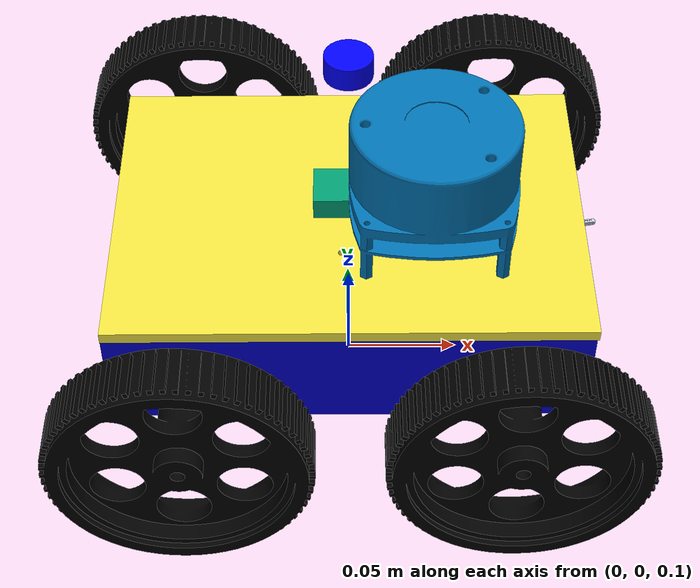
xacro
<?xml version="1.0"?>
<robot xmlns:xacro="http://www.ros.org/wiki/xacro" name="web_robot">

  <xacro:arg name="mesh_package" default="robot_description"/>
  <xacro:arg name="mesh_scale" default="0.1 0.1 0.1"/>
  <xacro:arg name="wheel_mass" default="0.25"/>
  <xacro:arg name="base_mass" default="2.0"/>
  <xacro:arg name="pi" default="3.141592653589793"/>
  <material name="blue"><color rgba="0 0 0.8 1"/></material>
  <material name="black"><color rgba="0 0 0 1"/></material>
  <material name="white"><color rgba="1 1 1 1"/></material>
  <physics type="ode">
    <real_time_update_rate>100</real_time_update_rate>
  </physics>
    <!-- Define inertial property macros  -->
  <xacro:macro name="box_inertia" params="m w h d">
    <inertial>
      <origin xyz="0 0 -0.05" rpy="0 0 0"/>
      <mass value="${m}"/>
      <inertia ixx="${(m/12) * (h*h + d*d)}" ixy="0.0" ixz="0.0" iyy="${(m/12) * (w*w + d*d)}" iyz="0.0" izz="${(m/12) * (w*w + h*h)}"/>
    </inertial>
  </xacro:macro>

  <xacro:macro name="cylinder_inertia" params="m r h">
    <inertial>
      <origin xyz="0 0 0" rpy="${pi/2} 0 0" />
      <mass value="${m}"/>
      <inertia ixx="${(m/12) * (3*r*r + h*h)}" ixy = "0" ixz = "0" iyy="${(m/12) * (3*r*r + h*h)}" iyz = "0" izz="${(m/2) * (r*r)}"/>
    </inertial>
  </xacro:macro>

  <xacro:macro name="sphere_inertia" params="m r">
    <inertial>
      <mass value="${m}"/>
      <inertia ixx="${(2/5) * m * (r*r)}" ixy="0.0" ixz="0.0" iyy="${(2/5) * m * (r*r)}" iyz="0.0" izz="${(2/5) * m * (r*r)}"/>
    </inertial>
  </xacro:macro>
  <xacro:macro name="base_link_macro" params="name">
    <link name="${name}">
      <visual>
        <origin xyz="0 0 0.0475"/>
        <geometry>
          <mesh filename="package://$(arg mesh_package)/meshes/base_link.dae" scale="$(arg mesh_scale)"/>
        </geometry>
        <material name="blue"/>
      </visual>
      <collision>
        <origin xyz="0 0 0.0475"/>
        <geometry>
          <mesh filename="package://$(arg mesh_package)/meshes/base_link.dae" scale="$(arg mesh_scale)" />
        </geometry>
      </collision>
      <xacro:box_inertia m="$(arg base_mass)" w="0.16" h="0.2" d="0.03"/>
    </link>
  </xacro:macro>
  <!-- DRIVEN wheel macro (front wheels - high longitudinal grip) -->
<xacro:macro name="driven_wheel_macro" params="name rpy xyz">
  <link name="${name}">
    <visual>
      <origin rpy="${rpy}" xyz="0 0 0"/>
      <geometry>
        <mesh filename="package://$(arg mesh_package)/meshes/wheel.dae" scale="$(arg mesh_scale)"/>
      </geometry>
      <material name="black"/>
    </visual>
    <collision>
      <origin rpy="${rpy}" xyz="0 0 0"/>
      <geometry>
        <mesh filename="package://$(arg mesh_package)/meshes/wheel.dae" scale="$(arg mesh_scale)"/>
      </geometry>
      <surface>
        <friction>
          <ode>
            <mu>1.0</mu>       <!-- good forward grip -->
            <mu2>0.003</mu2>     <!-- some lateral resistance is OK for driven wheels -->
            <slip1>0.02</slip1>
            <slip2>1.0</slip2>

          </ode>
        </friction>
        <contact>
          <ode>
            <kp>100000.0</kp>
            <kd>10.0</kd>
            <min_depth>0.001</min_depth>
          </ode>
        </contact>
      </surface>
    </collision>
    <xacro:cylinder_inertia m="$(arg wheel_mass)" r="0.054" h="0.02"/>
  </link>
  <joint name="${name}_joint" type="continuous">
    <axis xyz="0 1 0"/>
    <parent link="base_link"/>
    <child link="${name}"/>
    <origin rpy="0 0 0" xyz="${xyz}"/>
  </joint>
  <transmission name="${name}_trans">
    <type>transmission_interface/SimpleTransmission</type>
    <joint name="${name}_joint">
      <hardware_interface>hardware_interface/VelocityJointInterface</hardware_interface>
    </joint>
    <actuator name="${name}_motor">
      <hardware_interface>hardware_interface/VelocityJointInterface</hardware_interface>
      <mechanicalReduction>1</mechanicalReduction>
    </actuator>
  </transmission>
</xacro:macro>

<!-- PASSIVE wheel macro (rear wheels - must slip laterally during rotation) -->
<xacro:macro name="passive_wheel_macro" params="name rpy xyz ">
  <link name="${name}">
    <visual>
      <origin rpy="${rpy}" xyz="0 0 0"/>
      <geometry>
        <mesh filename="package://$(arg mesh_package)/meshes/wheel.dae" scale="$(arg mesh_scale)"/>
      </geometry>
      <material name="black"/>
    </visual>
    <collision>
      <origin rpy="${rpy}" xyz="0 0 0"/>
      <geometry>
        <mesh filename="package://$(arg mesh_package)/meshes/wheel.dae" scale="$(arg mesh_scale)"/>
      </geometry>
      <surface>
        <friction>
          <ode>
            <mu>1.5</mu>       <!-- some forward grip to follow the robot -->
            <mu2>0.01</mu2>    <!-- near-zero lateral friction = free sideways slip -->
            <slip1>0.002</slip1>
            <slip2>1.01</slip2> <!-- max lateral slip allowed -->

          </ode>
        </friction>
        <contact>
          <ode>
            <kp>100000.0</kp>
            <kd>10.0</kd>
            <min_depth>0.001</min_depth>
          </ode>
        </contact>
      </surface>
    </collision>
    <xacro:cylinder_inertia m="$(arg wheel_mass)" r="0.054" h="0.02"/>
  </link>
  <joint name="${name}_joint" type="continuous">
    <axis xyz="0 1 0"/>
    <parent link="base_link"/>
    <child link="${name}"/>
    <origin rpy="0 0 0" xyz="${xyz}"/>
  </joint>
  <transmission name="${name}_trans">
    <type>transmission_interface/SimpleTransmission</type>
    <joint name="${name}_joint">
      <hardware_interface>hardware_interface/VelocityJointInterface</hardware_interface>
    </joint>
    <actuator name="${name}_motor">
      <hardware_interface>hardware_interface/VelocityJointInterface</hardware_interface>
      <mechanicalReduction>1</mechanicalReduction>
    </actuator>
  </transmission>
</xacro:macro>

  <xacro:base_link_macro name="base_link"/>

  <!-- Dummy footprint -->
  <link name="base_footprint"/>
  <joint name="base_link_joint" type="fixed">
    <parent link="base_footprint"/>
    <child link="base_link"/>
    <origin xyz="0 0 0.1" rpy="0 0 0"/>
  </joint>
  <link name="camera_cad">
    <visual>
      <geometry>
      <mesh filename="package://$(arg mesh_package)/meshes/camera.dae" scale="$(arg mesh_scale)" />
      </geometry>
    </visual>
  </link>
  <joint name="camera_cad_joint" type="fixed">
    <parent link="base_link"/>
    <child link="camera_cad"/>
    <origin xyz="0.103 0 0.08" rpy="0 -0.17 0"/>
  </joint>

  <link name="top_cad">
    <visual>
      <geometry>
      <mesh filename="package://$(arg mesh_package)/meshes/top_cover.dae" scale="$(arg mesh_scale)" />
      </geometry>
    </visual>
  </link>
  <joint name="top_cover_joint" type="fixed">
    <parent link="base_link"/>
    <child link="top_cad"/>
    <origin xyz="0.1 0.07 0.09507" rpy="0 3.14 1.57075"/>
  </joint>

   <link name="lidar_cad">
    <visual>
      <geometry>
      <mesh filename="package://$(arg mesh_package)/meshes/lidar.dae" scale="$(arg mesh_scale)" />
      </geometry>
    </visual>
  </link>
  <joint name="lidar_joint" type="fixed">
    <parent link="base_link"/>
    <child link="lidar_cad"/>
    <origin xyz="0.0 -0.05 0.095" rpy="0 0 1.57075"/>
  </joint>

<!-- Front wheels: DRIVEN (controlled by diff_drive_controller) -->
<xacro:driven_wheel_macro  name="front_right_wheel" rpy="-1.57075 0 0" xyz="-0.069 -0.102 0.054"/>
<xacro:driven_wheel_macro  name="front_left_wheel"  rpy="1.57075 0 0"  xyz="-0.069 0.1 0.054"/>

<!-- Rear wheels: PASSIVE (free to slip sideways during turns) -->
<xacro:passive_wheel_macro name="back_right_wheel"  rpy="-1.57075 0 0" xyz="0.069 -0.102 0.054"/>
<xacro:passive_wheel_macro name="back_left_wheel"   rpy="1.57075 0 0"  xyz="0.069 0.1 0.054"/>
  <!-- Right side wheels (rpy has -1.57) -->

  <gazebo>
    <plugin name="gazebo_ros2_control" filename="libgazebo_ros2_control.so" >
      <parameters>$(find robot_description)/config/diff_drive_controllers.yaml</parameters>
    </plugin>

  </gazebo>

  <ros2_control name="WebRobotSystem" type="system">
    <hardware>
      <plugin>gazebo_ros2_control/GazeboSystem</plugin>
    </hardware>

    <joint name="front_left_wheel_joint">
      <command_interface name="velocity"/>
      <state_interface name="velocity"/>
      <state_interface name="position"/>
    </joint>
    <joint name="front_right_wheel_joint">
      <command_interface name="velocity"/>
      <state_interface name="velocity"/>
      <state_interface name="position"/>
    </joint>
    <joint name="back_left_wheel_joint">
      <command_interface name="velocity"/>
      <state_interface name="velocity"/>
      <state_interface name="position"/>
    </joint>
    <joint name="back_right_wheel_joint">
      <command_interface name="velocity"/>
      <state_interface name="velocity"/>
      <state_interface name="position"/>
    </joint>
  </ros2_control>

  <gazebo reference="front_right_wheel"><material>Gazebo/Black</material></gazebo>
  <gazebo reference="front_left_wheel"><material>Gazebo/Black</material></gazebo>
  <gazebo reference="back_right_wheel"><material>Gazebo/Black</material></gazebo>
  <gazebo reference="back_left_wheel"><material>Gazebo/Black</material></gazebo>
  <gazebo reference="base_link"><material>Gazebo/Blue</material></gazebo>

  <gazebo reference="camera_cad">
    <sensor name="camera" type="camera">

      <pose>0.1 0 0.98 0 -0.5 0</pose>
      <visualize>true</visualize>
      <update_rate>30.0</update_rate>
      <camera>
        <horizontal_fov>1.047</horizontal_fov>
        <image>
          <width>640</width>
          <height>480</height>
          <format>R8G8B8</format>
        </image>
        <clip><near>0.05</near><far>8</far></clip>
      </camera>
      <plugin name="camera_controller" filename="libgazebo_ros_camera.so">
        <ros>
          <namespace>camera</namespace>
          <argument>--ros-args -r __ns:=camera</argument>
        </ros>
        <camera_name>camera_sensor</camera_name>
        <frame_name>camera_link</frame_name>
      </plugin>
    </sensor>
  </gazebo>

<link name="laser_link">
  <inertial>
    <mass value="0.01"/>
    <inertia ixx="0.0001" ixy="0" ixz="0" iyy="0.0001" iyz="0" izz="0.0001"/>
  </inertial>
  <visual>
    <geometry>
      <cylinder radius="0.01" length="0.01"/>
    </geometry>
    <material name="blue">
      <color rgba="0 0 1 1"/>
    </material>
  </visual>
</link>

<joint name="laser_joint" type="fixed">
  <parent link="base_link"/>
  <child link="laser_link"/>

<origin xyz="0 0 0.17" rpy="0 0 0"/>
</joint>

<gazebo reference="laser_link">
  <sensor name="laser" type="ray">
    <pose>0 0 0 0 0 0</pose>
    <visualize>true</visualize>
    <update_rate>60.0</update_rate>
    <output_type>sensor_msgs/LaserScan</output_type>
    <ray>
      <scan>
        <horizontal>
          <samples>360</samples>
          <resolution>1</resolution>
          <min_angle>-3.14</min_angle>
          <max_angle>3.14</max_angle>
        </horizontal>
      </scan>
      <range>
        <min>0.1</min>
        <max>10.0</max>
        <resolution>0.01</resolution>
      </range>
    </ray>
    <plugin name="gazebo_ros_lidar_controller" filename="libgazebo_ros_ray_sensor.so">
      <ros>
        <namespace>/</namespace>
        <remapping>~/out:=scan_laser</remapping>
      </ros>
      <frame_name>laser_link</frame_name>
      <topic_name>scan_laser</topic_name>
    </plugin>
  </sensor>
</gazebo>
<link name="imu_link">
  <visual>
    <geometry>
      <box size="0.03 0.02 0.01"/>
    </geometry>
  </visual>

  <collision>
    <geometry>
      <box size="0.03 0.02 0.01"/>
    </geometry>
  </collision>

  <xacro:box_inertia m="0.1" w="0.1" d="0.1" h="0.1"/>
</link>

<joint name="imu_joint" type="fixed">
  <parent link="base_link"/>
  <child link="imu_link"/>
  <origin xyz="0 0 0.1"/>
</joint>

 <gazebo reference="imu_link">
  <sensor name="imu_sensor" type="imu">
   <plugin filename="libgazebo_ros_imu_sensor.so" name="imu_plugin">
      <ros>
        <namespace>/</namespace>
        <remapping>~/out:=imu</remapping>
      </ros>
      <initial_orientation_as_reference>false</initial_orientation_as_reference>
    </plugin>
    <always_on>true</always_on>
    <update_rate>100.0</update_rate>
    <visualize>true</visualize>
    <imu>
      <angular_velocity>
        <x>
          <noise type="gaussian">
            <mean>0.0</mean>
            <stddev>2e-4</stddev>
            <bias_mean>0.0000075</bias_mean>
            <bias_stddev>0.0000008</bias_stddev>
          </noise>
        </x>
        <y>
          <noise type="gaussian">
            <mean>0.0</mean>
            <stddev>2e-4</stddev>
            <bias_mean>0.0000075</bias_mean>
            <bias_stddev>0.0000008</bias_stddev>
          </noise>
        </y>
        <z>
          <noise type="gaussian">
            <mean>0.0</mean>
            <stddev>2e-4</stddev>
            <bias_mean>0.0000075</bias_mean>
            <bias_stddev>0.0000008</bias_stddev>
          </noise>
        </z>
      </angular_velocity>
      <linear_acceleration>
        <x>
          <noise type="gaussian">
            <mean>0.0</mean>
            <stddev>1.7e-2</stddev>
            <bias_mean>0.1</bias_mean>
            <bias_stddev>0.001</bias_stddev>
          </noise>
        </x>
        <y>
          <noise type="gaussian">
            <mean>0.0</mean>
            <stddev>1.7e-2</stddev>
            <bias_mean>0.1</bias_mean>
            <bias_stddev>0.001</bias_stddev>
          </noise>
        </y>
        <z>
          <noise type="gaussian">
            <mean>0.0</mean>
            <stddev>1.7e-2</stddev>
            <bias_mean>0.1</bias_mean>
            <bias_stddev>0.001</bias_stddev>
          </noise>
        </z>
      </linear_acceleration>
    </imu>
  </sensor>
</gazebo>

</robot>
